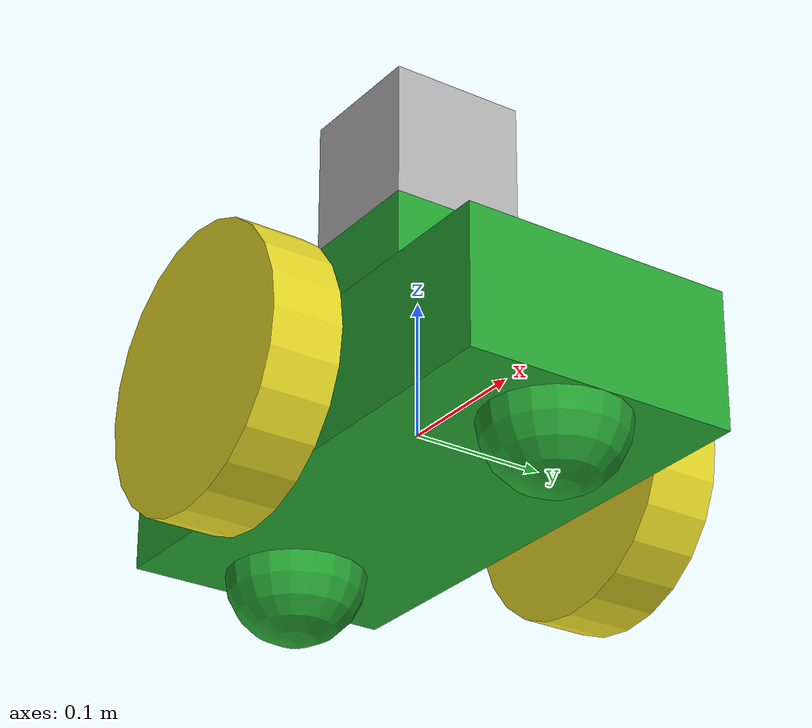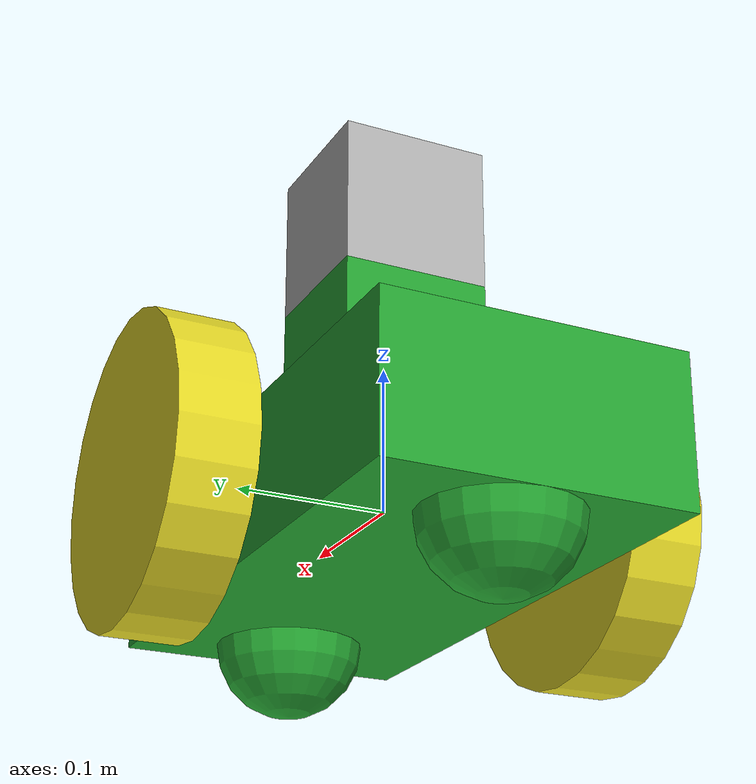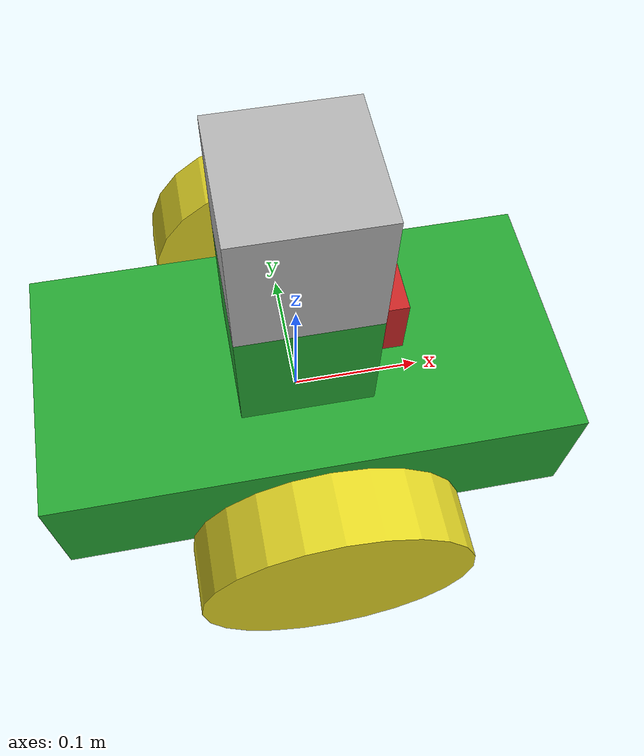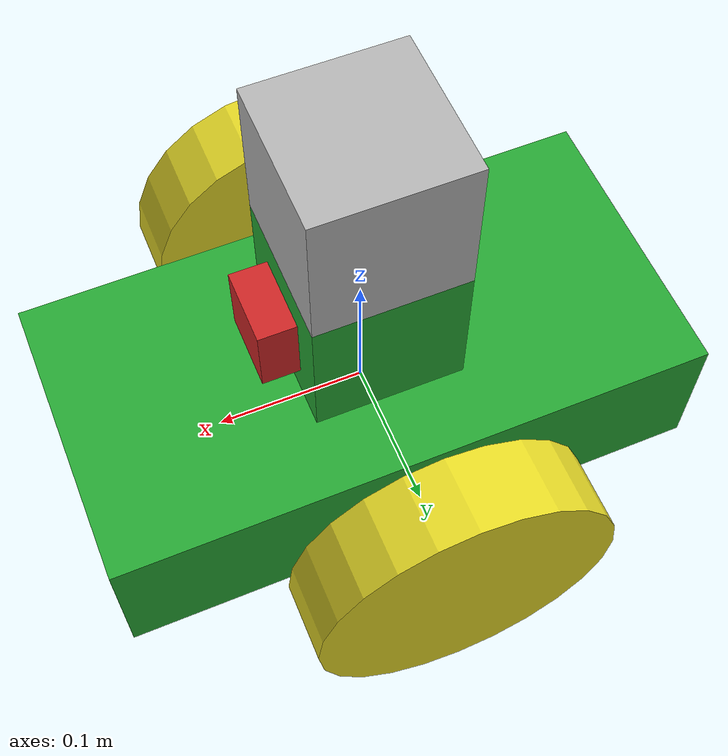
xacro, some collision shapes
<?xml version='1.0'?>

<robot name="my_robot_center" xmlns:xacro="http://www.ros.org/wiki/xacro">
  <xacro:include filename="$(find my_robot)/urdf/my_robot.gazebo" />

  <link name="robot_footprint"></link>

  <joint name="robot_footprint_joint" type="fixed">
    <origin xyz="0 0 0" rpy="0 0 0" />
    <parent link="robot_footprint"/>
    <child link="chassis" />
  </joint>

  <link name='chassis'>
    <pose>0 0 0.1 0 0 0</pose>

    <inertial>
      <mass value="15.0"/>
      <origin xyz="0.0 0 0" rpy=" 0 0 0"/>
      <inertia
          ixx="0.1" ixy="0" ixz="0"
          iyy="0.1" iyz="0"
          izz="0.1"
      />
    </inertial>

    <collision name='collision'>
      <origin xyz="0 0 0" rpy=" 0 0 0"/>
      <geometry>
        <box size=".4 .2 .1"/>
      </geometry>
    </collision>

    <visual name='chassis_visual'>
      <origin xyz="0 0 0" rpy=" 0 0 0"/>
      <geometry>
        <box size=".4 .2 .1"/>
      </geometry>
    </visual>

    <collision name='back_caster_collision'>
      <origin xyz="-0.15 0 -0.05" rpy=" 0 0 0"/>
      <geometry>
        <sphere radius="0.0499"/>
      </geometry>
    </collision>

    <visual name='back_caster_visual'>
      <origin xyz="-0.15 0 -0.05" rpy=" 0 0 0"/>
      <geometry>
        <sphere radius="0.05"/>
      </geometry>
    </visual>

    <collision name='front_caster_collision'>
      <origin xyz="0.15 0 -0.05" rpy=" 0 0 0"/>
      <geometry>
        <sphere radius="0.0499"/>
      </geometry>
    </collision>

    <visual name='front_caster_visual'>
      <origin xyz="0.15 0 -0.05" rpy=" 0 0 0"/>
      <geometry>
        <sphere radius="0.05"/>
      </geometry>
    </visual>

  </link>

  <link name="my_cube">
    <inertial>
      <mass value="1.0" />
      <origin xyz="0.1 0.1 0.1" />
      <inertia  ixx="1.0" ixy="0.0"  ixz="0.0"  iyy="1.0"  iyz="0.0"  izz="1.0" />
    </inertial>
    <visual>
      <!-- visual origin is defined w.r.t. link local coordinate system -->
      <origin xyz="0 0 0" rpy="0 0 0" />
      <geometry>
         <box size="0.1 0.1 0.1"/>
      </geometry>
    </visual>
    <collision>
      <!-- collision origin is defined w.r.t. link local coordinate system -->
      <origin xyz="0 0 0" rpy="0 0 0" />
      <geometry>
        <box size="0.1 0.1 0.1"/>
      </geometry>
    </collision>
  </link>

  <joint type="fixed" name="my_cube_joint">
    <origin xyz="0 0 0.1" rpy="0 0 0"/>
    <child link="my_cube"/>
    <parent link="chassis"/>
    <axis xyz="0 1 0" rpy="0 0 0"/>
  </joint>

  <link name="left_wheel">
    <collision name='left_wheel_collision'>
      <origin xyz="0 0 0" rpy="0 1.5707 1.5707"/>
      <geometry>
        <cylinder radius="0.1" length="0.05"/>
      </geometry>
    </collision>

    <visual name='left_wheel_visual'>
      <origin xyz="0 0 0" rpy="0 1.5707 1.5707"/>
      <geometry>
        <cylinder radius="0.1" length="0.05"/>
      </geometry>
    </visual>

    <inertial>
      <mass value="5.0"/>
      <origin xyz="0.0 0 0" rpy="0 1.5707 1.5707"/>
      <inertia
          ixx="0.1" ixy="0" ixz="0"
          iyy="0.1" iyz="0"
          izz="0.1"
      />
    </inertial>
  </link>

  <link name="right_wheel">
    <collision name='right_wheel_collision'>
      <origin xyz="0 0 0" rpy="0 1.5707 1.5707"/>
      <geometry>
        <cylinder radius="0.1" length="0.05"/>
      </geometry>
    </collision>

    <visual name='right_wheel_visual'>
      <origin xyz="0 0 0" rpy="0 1.5707 1.5707"/>
      <geometry>
        <cylinder radius="0.1" length="0.05"/>
      </geometry>
    </visual>

    <inertial>
      <mass value="5.0"/>
      <origin xyz="0.0 0 0" rpy="0 1.5707 1.5707"/>
      <inertia
          ixx="0.1" ixy="0" ixz="0"
          iyy="0.1" iyz="0"
          izz="0.1"
      />
    </inertial>
  </link>

  <joint type="continuous" name="left_wheel_hinge">
    <origin xyz="0 0.15 0" rpy="0 0 0"/>
    <child link="left_wheel"/>
    <parent link="chassis"/>
    <axis xyz="0 1 0" rpy="0 0 0"/>
    <limit effort="10000" velocity="1000"/>
    <dynamics damping="1.0" friction="1.0"/>
  </joint>

  <joint type="continuous" name="right_wheel_hinge">
    <origin xyz="0 -0.15 0" rpy="0 0 0"/>
    <child link="right_wheel"/>
    <parent link="chassis"/>
    <axis xyz="0 1 0" rpy="0 0 0"/>
    <limit effort="10000" velocity="1000"/>
    <dynamics damping="1.0" friction="1.0"/>
  </joint>

  <!-- ******* FRONT CAMERA ******* -->
  <link name="camera">
    <collision name='camera_collision'>
      <origin xyz="0 0 0" rpy="0 0 0"/>
      <geometry>
        <box size="0.05 0.05 0.05"/>
      </geometry>
    </collision>

    <visual name='camera_visual'>
      <origin xyz="0 0 0" rpy="0 0 0"/>
      <geometry>
        <box size="0.05 0.05 0.05"/>
      </geometry>
    </visual>

    <inertial>
      <mass value="0.1"/>
      <origin xyz="0.0 0 0" rpy="0 0 0"/>
      <inertia
          ixx="1e-6" ixy="0" ixz="0"
          iyy="1e-6" iyz="0"
          izz="1e-6"
      />
    </inertial>
  </link>

  <joint type="fixed" name="camera_joint">
    <origin xyz="0.05 0 0" rpy="0 0 0"/>
    <child link="camera"/>
    <parent link="my_cube"/>
    <axis xyz="0 1 0" rpy="0 0 0"/>
  </joint>

  <!-- camera optical joint -->
  <joint name="camera_optical_joint" type="fixed">
    <origin xyz="0 0 0" rpy="-1.5707 0 -1.5707"/>
    <parent link="camera"/>
    <child link="camera_optical"/>
  </joint>

<!-- Camera Optical Link -->
 <link name="camera_optical">
  </link>

  <!-- ******* LIDAR ******* -->
  <link name="hokuyo">
    <collision name='hokuyo_collision'>
      <origin xyz="0 0 0" rpy="0 0 0"/>
      <geometry>
        <box size="0.1 0.1 0.1"/>
      </geometry>
    </collision>

    <visual name='hokuyo_visual'>
      <origin xyz="0 0 0" rpy="0 0 0"/>
      <geometry>
        <mesh filename="package://my_robot/meshes/hokuyo.dae"/>
      </geometry>
    </visual>

    <inertial>
      <mass value="1e-5"/>
      <origin xyz="0.0 0 0" rpy="0 0 0"/>
      <inertia
          ixx="1e-6" ixy="0" ixz="0"
          iyy="1e-6" iyz="0"
          izz="1e-6"
      />
    </inertial>
  </link>

  <joint type="fixed" name="hokuyo_joint">
    <origin xyz="0 0 0.1" rpy="0 0 0"/>
    <child link="hokuyo"/>
    <parent link="my_cube"/>
    <axis xyz="0 1 0" rpy="0 0 0"/>
  </joint>

<gazebo reference="left_wheel">
    <material>Gazebo/Yellow</material>
</gazebo>

<gazebo reference="right_wheel">
    <material>Gazebo/Yellow</material>
</gazebo>

<gazebo reference="chassis">
    <material>Gazebo/Green</material>
</gazebo>

<gazebo reference="camera">
    <material>Gazebo/Red</material>
</gazebo>

<gazebo reference="my_cube">
  <material>Gazebo/Green</material>
   <turnGravityOff>false</turnGravityOff>
</gazebo>

</robot>
